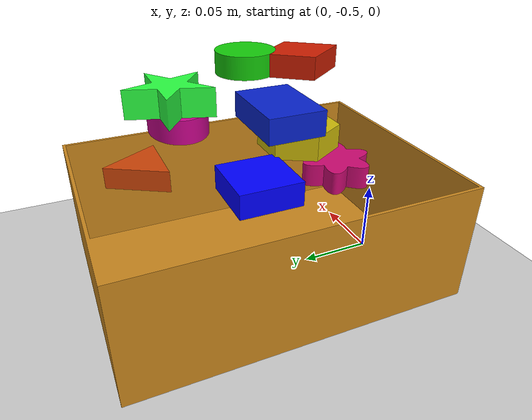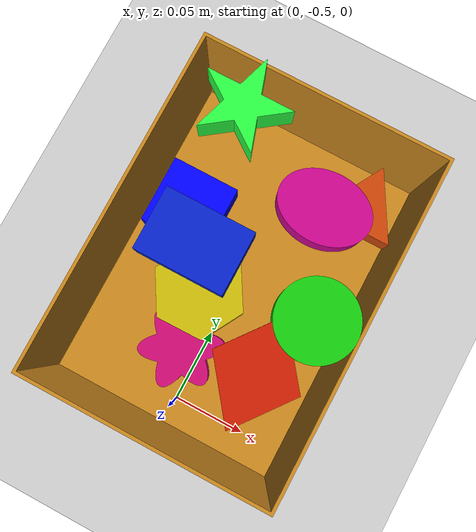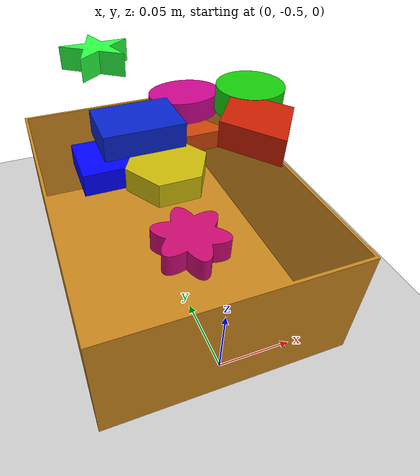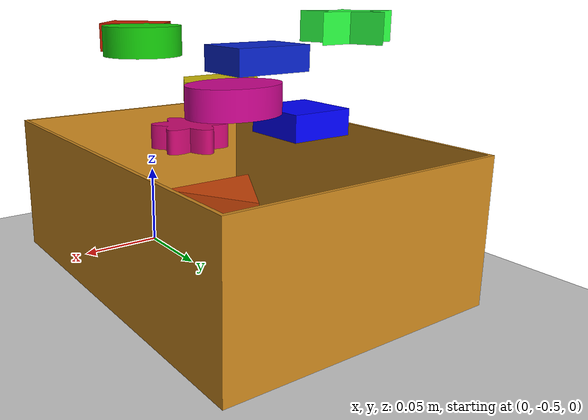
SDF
<sdf version="1.6">
 <world name="default">
  <light name="sun" type="directional">
   <pose>0 0 10 0 -0 0</pose>
   <diffuse>0.8 0.8 0.8 1</diffuse>
   <specular>0.1 0.1 0.1 1</specular>
   <attenuation>
    <range>1000</range>
    <constant>0.9</constant>
    <linear>0.01</linear>
    <quadratic>0.001</quadratic>
   </attenuation>
   <direction>-0.5 0.5 -1</direction>
  </light>
  <model name="ground_plane">
   <static>1</static>
   <link name="link">
    <collision name="collision">
     <geometry><plane><normal>0 0 1</normal><size>100 100</size></plane></geometry>
     <surface><friction><ode><mu>100</mu><mu2>50</mu2></ode></friction></surface>
    </collision>
    <visual name="visual">
     <cast_shadows>0</cast_shadows>
     <geometry><plane><normal>0 0 1</normal><size>100 100</size></plane></geometry>
     <material>
      <script><uri>file://media/materials/scripts/gazebo.material</uri><name>Gazebo/Grey</name></script>
     </material>
    </visual>
   </link>
  </model>
  <gravity>0 0 -9.8</gravity>
  <magnetic_field>6e-06 2.3e-05 -4.2e-05</magnetic_field>
  <atmosphere type="adiabatic"/>
  <physics name="default_physics" default="0" type="ode">
   <max_step_size>0.001</max_step_size>
   <real_time_factor>1</real_time_factor>
   <real_time_update_rate>1000</real_time_update_rate>
  </physics>
  <scene><ambient>0.4 0.4 0.4 1</ambient><background>0.7 0.7 0.7 1</background><shadows>1</shadows></scene>
  <spherical_coordinates>
   <surface_model>EARTH_WGS84</surface_model>
   <latitude_deg>0</latitude_deg>
   <longitude_deg>0</longitude_deg>
   <elevation>0</elevation>
   <heading_deg>0</heading_deg>
  </spherical_coordinates>
  <model name="Boite de rangement">
   <static>0</static>
   <link name="link">
    <collision name="collision">
     <geometry>
      <mesh><uri>model://boite_de_rangement/meshes/boite_de_rangementv5.dae</uri><scale>1 1 1</scale></mesh>
     </geometry>
    </collision>
    <visual name="visual">
     <geometry>
      <mesh><uri>model://boite_de_rangement/meshes/boite_de_rangementv5.dae</uri><scale>1 1 1</scale></mesh>
     </geometry>
    </visual>
    <inertial>
     <mass>0.15</mass>
     <inertia>
      <ixx>0.001</ixx>
      <ixy>6.7e-18</ixy>
      <ixz>0</ixz>
      <iyy>0.0064</iyy>
      <iyz>0</iyz>
      <izz>0.0014</izz>
     </inertia>
    </inertial>
   </link>
   <pose>-0.003082 -0.409178 0.008463 -3e-06 4e-06 5e-06</pose>
  </model>
  <model name="carre_bleu">
   <static>0</static>
   <link name="link">
    <collision name="collision">
     <geometry><mesh><uri>model://carre_bleu/meshes/carre_bleu.dae</uri><scale>1 1 1</scale></mesh></geometry>
    </collision>
    <visual name="visual">
     <geometry><mesh><uri>model://carre_bleu/meshes/carre_bleu.dae</uri><scale>1 1 1</scale></mesh></geometry>
    </visual>
    <inertial>
     <mass>0.018</mass>
     <inertia><ixx>1.7e-06</ixx><ixy>0</ixy><ixz>0</ixz><iyy>1.7e-06</iyy><iyz>0</iyz><izz>2.9e-06</izz></inertia>
    </inertial>
   </link>
   <pose>-0.038603 -0.393777 0.095576 0 -0 0</pose>
  </model>
  <model name="Etoile verte">
   <static>0</static>
   <link name="link">
    <collision name="collision">
     <geometry><mesh><uri>model://etoile_verte/meshes/etoile_verte.dae</uri><scale>1 1 1</scale></mesh></geometry>
    </collision>
    <visual name="visual">
     <geometry><mesh><uri>model://etoile_verte/meshes/etoile_verte.dae</uri><scale>1 1 1</scale></mesh></geometry>
    </visual>
    <inertial>
     <mass>0.015</mass>
     <inertia><ixx>6e-07</ixx><ixy>0</ixy><ixz>0</ixz><iyy>6e-07</iyy><iyz>0</iyz><izz>9e-07</izz></inertia>
    </inertial>
   </link>
   <pose>-0.029997 -0.348318 0.149155 0 -0 0</pose>
  </model>
  <model name="Fleur rose">
   <static>0</static>
   <link name="link">
    <collision name="collision">
     <geometry><mesh><uri>model://fleur_rose/meshes/fleur_rose.dae</uri><scale>1 1 1</scale></mesh></geometry>
    </collision>
    <visual name="visual">
     <geometry><mesh><uri>model://fleur_rose/meshes/fleur_rose.dae</uri><scale>1 1 1</scale></mesh></geometry>
    </visual>
    <inertial>
     <mass>0.015</mass>
     <inertia><ixx>1.9e-06</ixx><ixy>0</ixy><ixz>0</ixz><iyy>1.9e-06</iyy><iyz>0</iyz><izz>3.3e-06</izz></inertia>
    </inertial>
   </link>
   <pose>-0.007769 -0.463142 0.078578 0 -0 0</pose>
  </model>
  <model name="Hexagone jaune">
   <static>0</static>
   <link name="link">
    <collision name="collision">
     <geometry>
      <mesh><uri>model://hexagone_jaune/meshes/hexagone_jaune.dae</uri><scale>1 1 1</scale></mesh>
     </geometry>
    </collision>
    <visual name="visual">
     <geometry>
      <mesh><uri>model://hexagone_jaune/meshes/hexagone_jaune.dae</uri><scale>1 1 1</scale></mesh>
     </geometry>
    </visual>
    <inertial>
     <mass>0.019</mass>
     <inertia><ixx>2.9e-06</ixx><ixy>0</ixy><ixz>0</ixz><iyy>2.9e-06</iyy><iyz>0</iyz><izz>5e-06</izz></inertia>
    </inertial>
   </link>
   <pose>-0.010538 -0.4318 0.109935 0 -0 0</pose>
  </model>
  <model name="Losange orange">
   <static>0</static>
   <link name="link">
    <collision name="collision">
     <geometry>
      <mesh><uri>model://losange_orange/meshes/losange_orange.dae</uri><scale>1 1 1</scale></mesh>
     </geometry>
    </collision>
    <visual name="visual">
     <geometry>
      <mesh><uri>model://losange_orange/meshes/losange_orange.dae</uri><scale>1 1 1</scale></mesh>
     </geometry>
    </visual>
    <inertial>
     <mass>0.014</mass>
     <inertia><ixx>2.3e-06</ixx><ixy>0</ixy><ixz>0</ixz><iyy>1.4e-06</iyy><iyz>0</iyz><izz>3.2e-06</izz></inertia>
    </inertial>
   </link>
   <pose>0.031476 -0.453449 0.140684 0 -0 0</pose>
  </model>
  <model name="Ovale rose">
   <static>0</static>
   <link name="link">
    <collision name="collision">
     <geometry><mesh><uri>model://ovale_rose/meshes/ovale_rose.dae</uri><scale>1 1 1</scale></mesh></geometry>
    </collision>
    <visual name="visual">
     <geometry><mesh><uri>model://ovale_rose/meshes/ovale_rose.dae</uri><scale>1 1 1</scale></mesh></geometry>
    </visual>
    <inertial>
     <mass>0.016</mass>
     <inertia><ixx>1.8e-06</ixx><ixy>0</ixy><ixz>0</ixz><iyy>3e-06</iyy><iyz>0</iyz><izz>4.2e-06</izz></inertia>
    </inertial>
   </link>
   <pose>0.025087 -0.366883 0.116895 0 -0 0</pose>
  </model>
  <model name="Rectangle Bleu">
   <static>0</static>
   <link name="link">
    <collision name="collision">
     <geometry>
      <mesh><uri>model://rectangle_bleu/meshes/rectangle_bleu.dae</uri><scale>1 1 1</scale></mesh>
     </geometry>
    </collision>
    <visual name="visual">
     <geometry>
      <mesh><uri>model://rectangle_bleu/meshes/rectangle_bleu.dae</uri><scale>1 1 1</scale></mesh>
     </geometry>
    </visual>
    <inertial>
     <mass>0.017</mass>
     <inertia><ixx>2.2e-06</ixx><ixy>0</ixy><ixz>0</ixz><iyy>4.1e-06</iyy><iyz>0</iyz><izz>5.6e-06</izz></inertia>
    </inertial>
   </link>
   <pose>-0.022874 -0.413653 0.129779 0 -0 0</pose>
  </model>
  <model name="Rond vert">
   <static>0</static>
   <link name="link">
    <collision name="collision">
     <geometry><mesh><uri>model://rond_vert/meshes/rond_vert.dae</uri><scale>1 1 1</scale></mesh></geometry>
    </collision>
    <visual name="visual">
     <geometry><mesh><uri>model://rond_vert/meshes/rond_vert.dae</uri><scale>1 1 1</scale></mesh></geometry>
    </visual>
    <inertial>
     <mass>0.014</mass>
     <inertia><ixx>1.7e-06</ixx><ixy>0</ixy><ixz>0</ixz><iyy>1.7e-06</iyy><iyz>0</iyz><izz>3e-06</izz></inertia>
    </inertial>
   </link>
   <pose>0.044791 -0.42048 0.140726 0 -0 0</pose>
  </model>
  <model name="Triangle orange">
   <static>0</static>
   <link name="link">
    <collision name="collision">
     <geometry>
      <mesh><uri>model://triangle_orange/meshes/triangle_orange.dae</uri><scale>1 1 1</scale></mesh>
     </geometry>
    </collision>
    <visual name="visual">
     <geometry>
      <mesh><uri>model://triangle_orange/meshes/triangle_orange.dae</uri><scale>1 1 1</scale></mesh>
     </geometry>
    </visual>
    <inertial>
     <mass>0.011</mass>
     <inertia><ixx>1e-06</ixx><ixy>0</ixy><ixz>0</ixz><iyy>1e-06</iyy><iyz>0</iyz><izz>1.7e-06</izz></inertia>
    </inertial>
   </link>
   <pose>0.044947 -0.340324 0.07415 0 -0 0</pose>
  </model>
 </world>
</sdf>
